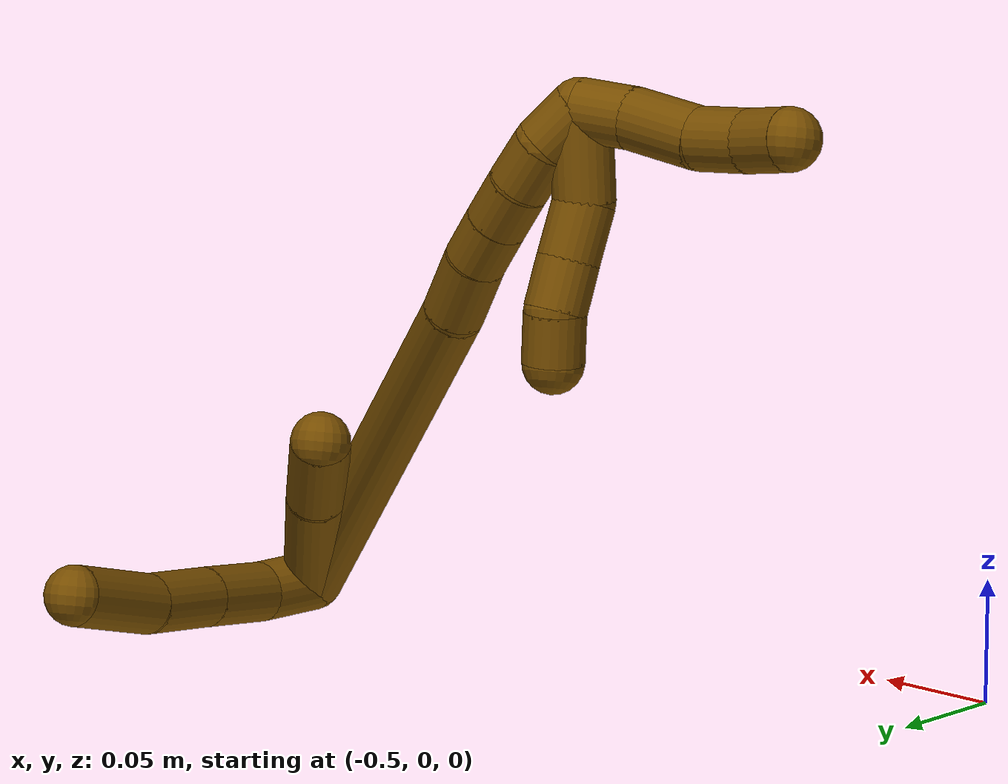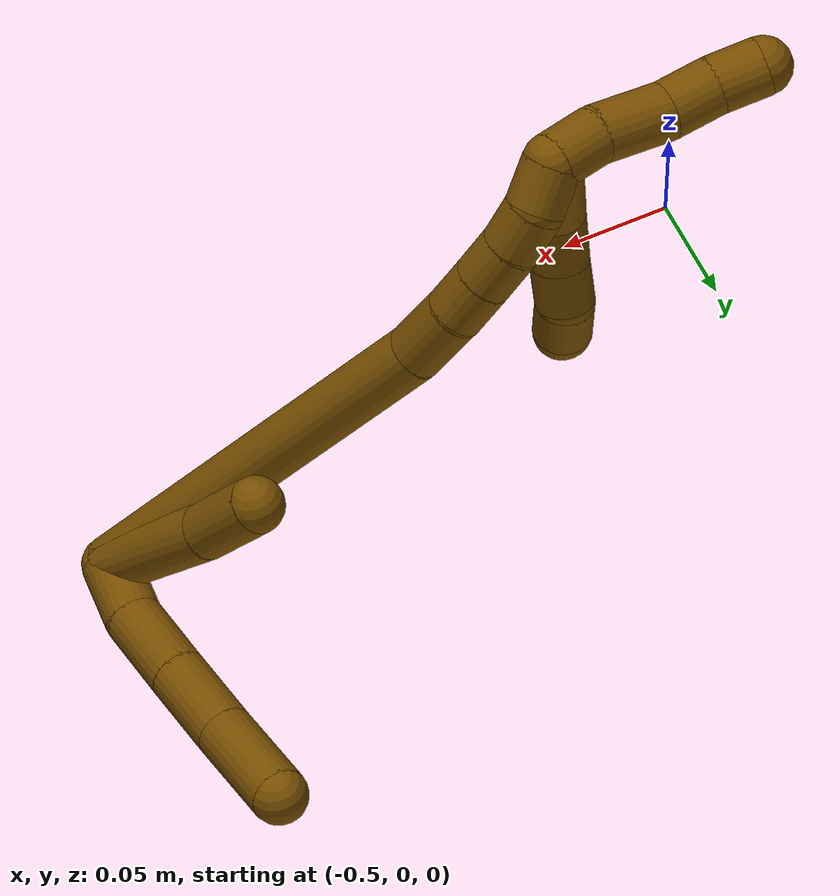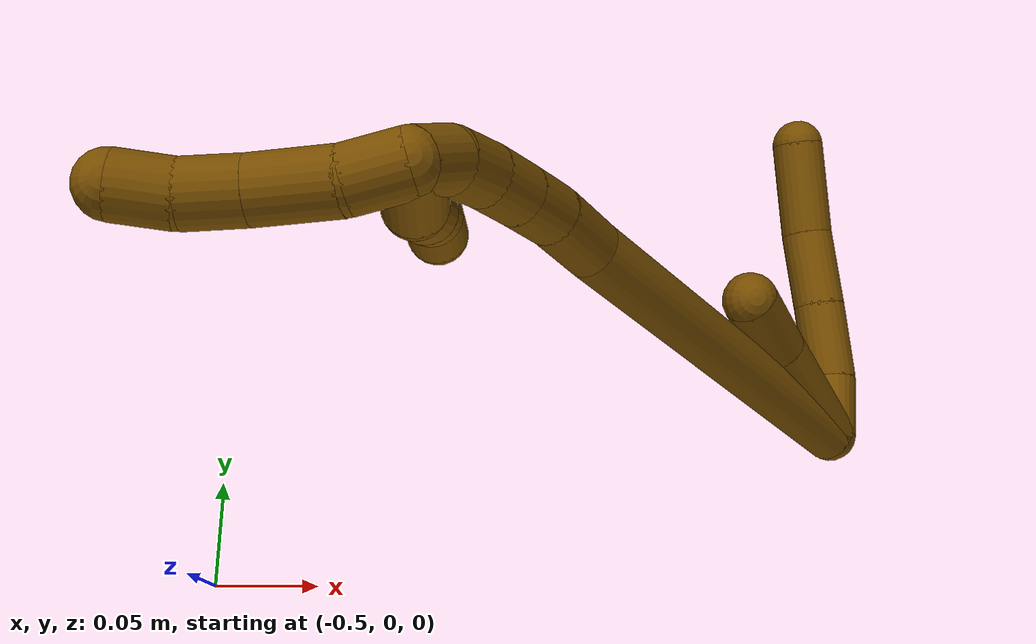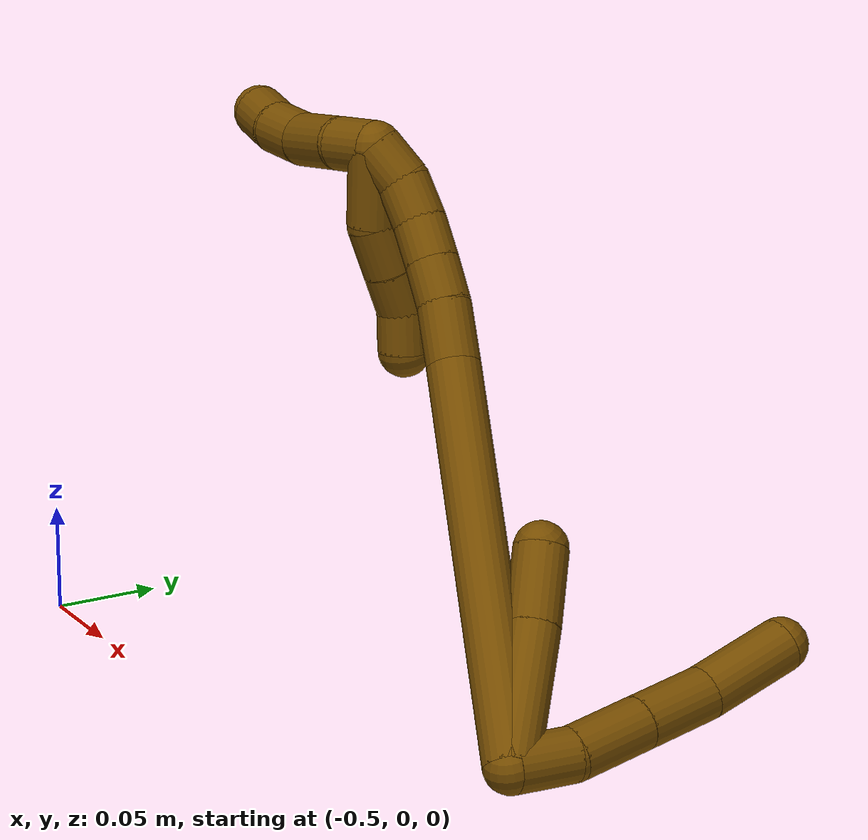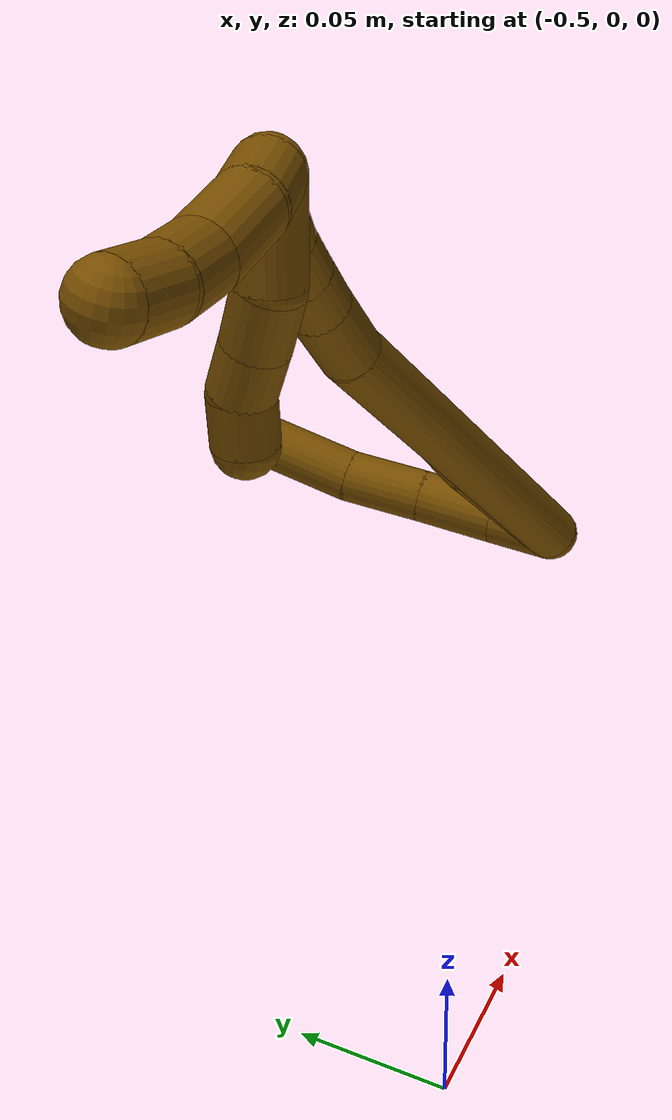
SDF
<sdf version="1.7">
 <world name="default">
  <model name="12">
   <static>0</static>
   <link name="12">
    <collision name="collision-cylinder-e_1_2_8">
     <pose>-0.014269 0.000236 -0.00327 -3.06948 -1.34495 3.05106</pose>
     <geometry><cylinder><radius>0.0125</radius><length>0.029281</length></cylinder></geometry>
     <surface>
      <friction><ode><mu>1.16</mu><mu2>1.16</mu2><slip1>0</slip1><slip2>0</slip2></ode></friction>
      <contact><ode><kp>1e+06</kp><kd>1</kd><max_vel>0</max_vel><min_depth>0.001</min_depth></ode></contact>
     </surface>
    </collision>
    <visual name="visual-cylinder-e_1_2_8">
     <pose>-0.014269 0.000236 -0.00327 -3.06948 -1.34495 3.05106</pose>
     <geometry><cylinder><radius>0.0125</radius><length>0.029281</length></cylinder></geometry>
     <material><ambient>0.466667 0.301961 0 1</ambient></material>
    </visual>
    <collision name="collision-cylinder-e_2_8_9">
     <pose>-0.046714 -0.003021 -0.008454 2.07211 -1.35506 -1.87243</pose>
     <geometry><cylinder><radius>0.0125</radius><length>0.037215</length></cylinder></geometry>
     <surface>
      <friction><ode><mu>1.16</mu><mu2>1.16</mu2><slip1>0</slip1><slip2>0</slip2></ode></friction>
      <contact><ode><kp>1e+06</kp><kd>1</kd><max_vel>0</max_vel><min_depth>0.001</min_depth></ode></contact>
     </surface>
    </collision>
    <visual name="visual-cylinder-e_2_8_9">
     <pose>-0.046714 -0.003021 -0.008454 2.07211 -1.35506 -1.87243</pose>
     <geometry><cylinder><radius>0.0125</radius><length>0.037215</length></cylinder></geometry>
     <material><ambient>0.466667 0.301961 0 1</ambient></material>
    </visual>
    <collision name="collision-cylinder-e_3_9_10">
     <pose>-0.083079 -0.010281 -0.012475 2.08061 -1.33784 -1.86482</pose>
     <geometry><cylinder><radius>0.0125</radius><length>0.037388</length></cylinder></geometry>
     <surface>
      <friction><ode><mu>1.16</mu><mu2>1.16</mu2><slip1>0</slip1><slip2>0</slip2></ode></friction>
      <contact><ode><kp>1e+06</kp><kd>1</kd><max_vel>0</max_vel><min_depth>0.001</min_depth></ode></contact>
     </surface>
    </collision>
    <visual name="visual-cylinder-e_3_9_10">
     <pose>-0.083079 -0.010281 -0.012475 2.08061 -1.33784 -1.86482</pose>
     <geometry><cylinder><radius>0.0125</radius><length>0.037388</length></cylinder></geometry>
     <material><ambient>0.466667 0.301961 0 1</ambient></material>
    </visual>
    <collision name="collision-cylinder-e_4_10_6">
     <pose>-0.123915 -0.018322 -0.013873 1.40665 -1.38175 -1.22296</pose>
     <geometry><cylinder><radius>0.0125</radius><length>0.046116</length></cylinder></geometry>
     <surface>
      <friction><ode><mu>1.16</mu><mu2>1.16</mu2><slip1>0</slip1><slip2>0</slip2></ode></friction>
      <contact><ode><kp>1e+06</kp><kd>1</kd><max_vel>0</max_vel><min_depth>0.001</min_depth></ode></contact>
     </surface>
    </collision>
    <visual name="visual-cylinder-e_4_10_6">
     <pose>-0.123915 -0.018322 -0.013873 1.40665 -1.38175 -1.22296</pose>
     <geometry><cylinder><radius>0.0125</radius><length>0.046116</length></cylinder></geometry>
     <material><ambient>0.466667 0.301961 0 1</ambient></material>
    </visual>
    <collision name="collision-cylinder-e_1_2_11">
     <pose>-0.0186 -0.019489 0.017401 0.84194 -0.61866 -0.284253</pose>
     <geometry><cylinder><radius>0.0125</radius><length>0.064143</length></cylinder></geometry>
     <surface>
      <friction><ode><mu>1.16</mu><mu2>1.16</mu2><slip1>0</slip1><slip2>0</slip2></ode></friction>
      <contact><ode><kp>1e+06</kp><kd>1</kd><max_vel>0</max_vel><min_depth>0.001</min_depth></ode></contact>
     </surface>
    </collision>
    <visual name="visual-cylinder-e_1_2_11">
     <pose>-0.0186 -0.019489 0.017401 0.84194 -0.61866 -0.284253</pose>
     <geometry><cylinder><radius>0.0125</radius><length>0.064143</length></cylinder></geometry>
     <material><ambient>0.466667 0.301961 0 1</ambient></material>
    </visual>
    <collision name="collision-cylinder-e_2_11_5">
     <pose>-0.046637 -0.049373 0.045953 0.750326 -0.554355 -0.223151</pose>
     <geometry><cylinder><radius>0.0125</radius><length>0.035857</length></cylinder></geometry>
     <surface>
      <friction><ode><mu>1.16</mu><mu2>1.16</mu2><slip1>0</slip1><slip2>0</slip2></ode></friction>
      <contact><ode><kp>1e+06</kp><kd>1</kd><max_vel>0</max_vel><min_depth>0.001</min_depth></ode></contact>
     </surface>
    </collision>
    <visual name="visual-cylinder-e_2_11_5">
     <pose>-0.046637 -0.049373 0.045953 0.750326 -0.554355 -0.223151</pose>
     <geometry><cylinder><radius>0.0125</radius><length>0.035857</length></cylinder></geometry>
     <material><ambient>0.466667 0.301961 0 1</ambient></material>
    </visual>
    <collision name="collision-cylinder-e_1_2_12">
     <pose>-0.031675 -0.069778 0.056041 0.894154 -0.340166 -0.164315</pose>
     <geometry><cylinder><radius>0.0125</radius><length>0.189872</length></cylinder></geometry>
     <surface>
      <friction><ode><mu>1.16</mu><mu2>1.16</mu2><slip1>0</slip1><slip2>0</slip2></ode></friction>
      <contact><ode><kp>1e+06</kp><kd>1</kd><max_vel>0</max_vel><min_depth>0.001</min_depth></ode></contact>
     </surface>
    </collision>
    <visual name="visual-cylinder-e_1_2_12">
     <pose>-0.031675 -0.069778 0.056041 0.894154 -0.340166 -0.164315</pose>
     <geometry><cylinder><radius>0.0125</radius><length>0.189872</length></cylinder></geometry>
     <material><ambient>0.466667 0.301961 0 1</ambient></material>
    </visual>
    <collision name="collision-cylinder-e_2_12_13">
     <pose>-0.067487 -0.14889 0.12237 0.736731 -0.289472 -0.1124</pose>
     <geometry><cylinder><radius>0.0125</radius><length>0.028988</length></cylinder></geometry>
     <surface>
      <friction><ode><mu>1.16</mu><mu2>1.16</mu2><slip1>0</slip1><slip2>0</slip2></ode></friction>
      <contact><ode><kp>1e+06</kp><kd>1</kd><max_vel>0</max_vel><min_depth>0.001</min_depth></ode></contact>
     </surface>
    </collision>
    <visual name="visual-cylinder-e_2_12_13">
     <pose>-0.067487 -0.14889 0.12237 0.736731 -0.289472 -0.1124</pose>
     <geometry><cylinder><radius>0.0125</radius><length>0.028988</length></cylinder></geometry>
     <material><ambient>0.466667 0.301961 0 1</ambient></material>
    </visual>
    <collision name="collision-cylinder-e_3_13_14">
     <pose>-0.07343 -0.165208 0.139966 0.762871 -0.176803 -0.071067</pose>
     <geometry><cylinder><radius>0.0125</radius><length>0.020538</length></cylinder></geometry>
     <surface>
      <friction><ode><mu>1.16</mu><mu2>1.16</mu2><slip1>0</slip1><slip2>0</slip2></ode></friction>
      <contact><ode><kp>1e+06</kp><kd>1</kd><max_vel>0</max_vel><min_depth>0.001</min_depth></ode></contact>
     </surface>
    </collision>
    <visual name="visual-cylinder-e_3_13_14">
     <pose>-0.07343 -0.165208 0.139966 0.762871 -0.176803 -0.071067</pose>
     <geometry><cylinder><radius>0.0125</radius><length>0.020538</length></cylinder></geometry>
     <material><ambient>0.466667 0.301961 0 1</ambient></material>
    </visual>
    <collision name="collision-cylinder-e_4_14_15">
     <pose>-0.076757 -0.179036 0.154455 0.761228 -0.15211 -0.060962</pose>
     <geometry><cylinder><radius>0.0125</radius><length>0.020071</length></cylinder></geometry>
     <surface>
      <friction><ode><mu>1.16</mu><mu2>1.16</mu2><slip1>0</slip1><slip2>0</slip2></ode></friction>
      <contact><ode><kp>1e+06</kp><kd>1</kd><max_vel>0</max_vel><min_depth>0.001</min_depth></ode></contact>
     </surface>
    </collision>
    <visual name="visual-cylinder-e_4_14_15">
     <pose>-0.076757 -0.179036 0.154455 0.761228 -0.15211 -0.060962</pose>
     <geometry><cylinder><radius>0.0125</radius><length>0.020071</length></cylinder></geometry>
     <material><ambient>0.466667 0.301961 0 1</ambient></material>
    </visual>
    <collision name="collision-cylinder-e_5_15_16">
     <pose>-0.078709 -0.192379 0.169359 0.6997 -0.042701 -0.015582</pose>
     <geometry><cylinder><radius>0.0125</radius><length>0.020207</length></cylinder></geometry>
     <surface>
      <friction><ode><mu>1.16</mu><mu2>1.16</mu2><slip1>0</slip1><slip2>0</slip2></ode></friction>
      <contact><ode><kp>1e+06</kp><kd>1</kd><max_vel>0</max_vel><min_depth>0.001</min_depth></ode></contact>
     </surface>
    </collision>
    <visual name="visual-cylinder-e_5_15_16">
     <pose>-0.078709 -0.192379 0.169359 0.6997 -0.042701 -0.015582</pose>
     <geometry><cylinder><radius>0.0125</radius><length>0.020207</length></cylinder></geometry>
     <material><ambient>0.466667 0.301961 0 1</ambient></material>
    </visual>
    <collision name="collision-cylinder-e_6_16_1">
     <pose>-0.076409 -0.205219 0.18454 0.70447 0.27218 0.100581</pose>
     <geometry><cylinder><radius>0.0125</radius><length>0.020323</length></cylinder></geometry>
     <surface>
      <friction><ode><mu>1.16</mu><mu2>1.16</mu2><slip1>0</slip1><slip2>0</slip2></ode></friction>
      <contact><ode><kp>1e+06</kp><kd>1</kd><max_vel>0</max_vel><min_depth>0.001</min_depth></ode></contact>
     </surface>
    </collision>
    <visual name="visual-cylinder-e_6_16_1">
     <pose>-0.076409 -0.205219 0.18454 0.70447 0.27218 0.100581</pose>
     <geometry><cylinder><radius>0.0125</radius><length>0.020323</length></cylinder></geometry>
     <material><ambient>0.466667 0.301961 0 1</ambient></material>
    </visual>
    <collision name="collision-cylinder-e_1_1_17">
     <pose>-0.069575 -0.210607 0.174483 -3.08737 0.229756 -2.6799</pose>
     <geometry><cylinder><radius>0.0125</radius><length>0.036028</length></cylinder></geometry>
     <surface>
      <friction><ode><mu>1.16</mu><mu2>1.16</mu2><slip1>0</slip1><slip2>0</slip2></ode></friction>
      <contact><ode><kp>1e+06</kp><kd>1</kd><max_vel>0</max_vel><min_depth>0.001</min_depth></ode></contact>
     </surface>
    </collision>
    <visual name="visual-cylinder-e_1_1_17">
     <pose>-0.069575 -0.210607 0.174483 -3.08737 0.229756 -2.6799</pose>
     <geometry><cylinder><radius>0.0125</radius><length>0.036028</length></cylinder></geometry>
     <material><ambient>0.466667 0.301961 0 1</ambient></material>
    </visual>
    <collision name="collision-cylinder-e_2_17_18">
     <pose>-0.066643 -0.207901 0.145489 -2.98988 -0.100529 1.16942</pose>
     <geometry><cylinder><radius>0.0125</radius><length>0.023342</length></cylinder></geometry>
     <surface>
      <friction><ode><mu>1.16</mu><mu2>1.16</mu2><slip1>0</slip1><slip2>0</slip2></ode></friction>
      <contact><ode><kp>1e+06</kp><kd>1</kd><max_vel>0</max_vel><min_depth>0.001</min_depth></ode></contact>
     </surface>
    </collision>
    <visual name="visual-cylinder-e_2_17_18">
     <pose>-0.066643 -0.207901 0.145489 -2.98988 -0.100529 1.16942</pose>
     <geometry><cylinder><radius>0.0125</radius><length>0.023342</length></cylinder></geometry>
     <material><ambient>0.466667 0.301961 0 1</ambient></material>
    </visual>
    <collision name="collision-cylinder-e_3_18_19">
     <pose>-0.068999 -0.205003 0.123862 -3.02947 -0.115465 1.6002</pose>
     <geometry><cylinder><radius>0.0125</radius><length>0.020564</length></cylinder></geometry>
     <surface>
      <friction><ode><mu>1.16</mu><mu2>1.16</mu2><slip1>0</slip1><slip2>0</slip2></ode></friction>
      <contact><ode><kp>1e+06</kp><kd>1</kd><max_vel>0</max_vel><min_depth>0.001</min_depth></ode></contact>
     </surface>
    </collision>
    <visual name="visual-cylinder-e_3_18_19">
     <pose>-0.068999 -0.205003 0.123862 -3.02947 -0.115465 1.6002</pose>
     <geometry><cylinder><radius>0.0125</radius><length>0.020564</length></cylinder></geometry>
     <material><ambient>0.466667 0.301961 0 1</ambient></material>
    </visual>
    <collision name="collision-cylinder-e_4_19_4">
     <pose>-0.067996 -0.202328 0.104041 -2.98448 0.219795 -1.90224</pose>
     <geometry><cylinder><radius>0.0125</radius><length>0.020067</length></cylinder></geometry>
     <surface>
      <friction><ode><mu>1.16</mu><mu2>1.16</mu2><slip1>0</slip1><slip2>0</slip2></ode></friction>
      <contact><ode><kp>1e+06</kp><kd>1</kd><max_vel>0</max_vel><min_depth>0.001</min_depth></ode></contact>
     </surface>
    </collision>
    <visual name="visual-cylinder-e_4_19_4">
     <pose>-0.067996 -0.202328 0.104041 -2.98448 0.219795 -1.90224</pose>
     <geometry><cylinder><radius>0.0125</radius><length>0.020067</length></cylinder></geometry>
     <material><ambient>0.466667 0.301961 0 1</ambient></material>
    </visual>
    <collision name="collision-cylinder-e_1_1_20">
     <pose>-0.069726 -0.222243 0.190767 1.68546 0.352056 0.393885</pose>
     <geometry><cylinder><radius>0.0125</radius><length>0.022917</length></cylinder></geometry>
     <surface>
      <friction><ode><mu>1.16</mu><mu2>1.16</mu2><slip1>0</slip1><slip2>0</slip2></ode></friction>
      <contact><ode><kp>1e+06</kp><kd>1</kd><max_vel>0</max_vel><min_depth>0.001</min_depth></ode></contact>
     </surface>
    </collision>
    <visual name="visual-cylinder-e_1_1_20">
     <pose>-0.069726 -0.222243 0.190767 1.68546 0.352056 0.393885</pose>
     <geometry><cylinder><radius>0.0125</radius><length>0.022917</length></cylinder></geometry>
     <material><ambient>0.466667 0.301961 0 1</ambient></material>
    </visual>
    <collision name="collision-cylinder-e_2_20_21">
     <pose>-0.063221 -0.248569 0.186103 1.78683 0.15812 0.196361</pose>
     <geometry><cylinder><radius>0.0125</radius><length>0.032431</length></cylinder></geometry>
     <surface>
      <friction><ode><mu>1.16</mu><mu2>1.16</mu2><slip1>0</slip1><slip2>0</slip2></ode></friction>
      <contact><ode><kp>1e+06</kp><kd>1</kd><max_vel>0</max_vel><min_depth>0.001</min_depth></ode></contact>
     </surface>
    </collision>
    <visual name="visual-cylinder-e_2_20_21">
     <pose>-0.063221 -0.248569 0.186103 1.78683 0.15812 0.196361</pose>
     <geometry><cylinder><radius>0.0125</radius><length>0.032431</length></cylinder></geometry>
     <material><ambient>0.466667 0.301961 0 1</ambient></material>
    </visual>
    <collision name="collision-cylinder-e_3_21_22">
     <pose>-0.058866 -0.275589 0.182561 1.58044 0.157007 0.158522</pose>
     <geometry><cylinder><radius>0.0125</radius><length>0.023042</length></cylinder></geometry>
     <surface>
      <friction><ode><mu>1.16</mu><mu2>1.16</mu2><slip1>0</slip1><slip2>0</slip2></ode></friction>
      <contact><ode><kp>1e+06</kp><kd>1</kd><max_vel>0</max_vel><min_depth>0.001</min_depth></ode></contact>
     </surface>
    </collision>
    <visual name="visual-cylinder-e_3_21_22">
     <pose>-0.058866 -0.275589 0.182561 1.58044 0.157007 0.158522</pose>
     <geometry><cylinder><radius>0.0125</radius><length>0.023042</length></cylinder></geometry>
     <material><ambient>0.466667 0.301961 0 1</ambient></material>
    </visual>
    <collision name="collision-cylinder-e_4_22_3">
     <pose>-0.057485 -0.297758 0.182822 1.53643 -0.0389 -0.037586</pose>
     <geometry><cylinder><radius>0.0125</radius><length>0.021609</length></cylinder></geometry>
     <surface>
      <friction><ode><mu>1.16</mu><mu2>1.16</mu2><slip1>0</slip1><slip2>0</slip2></ode></friction>
      <contact><ode><kp>1e+06</kp><kd>1</kd><max_vel>0</max_vel><min_depth>0.001</min_depth></ode></contact>
     </surface>
    </collision>
    <visual name="visual-cylinder-e_4_22_3">
     <pose>-0.057485 -0.297758 0.182822 1.53643 -0.0389 -0.037586</pose>
     <geometry><cylinder><radius>0.0125</radius><length>0.021609</length></cylinder></geometry>
     <material><ambient>0.466667 0.301961 0 1</ambient></material>
    </visual>
    <collision name="collision-sphere-3">
     <pose>-0.057905 -0.308548 0.183193 0 -0 0</pose>
     <geometry><sphere><radius>0.0125</radius></sphere></geometry>
     <surface>
      <friction><ode><mu>1.16</mu><mu2>1.16</mu2><slip1>0</slip1><slip2>0</slip2></ode></friction>
      <contact><ode><kp>1e+06</kp><kd>1</kd><max_vel>0</max_vel><min_depth>0.001</min_depth></ode></contact>
     </surface>
    </collision>
    <visual name="visual-sphere-3">
     <pose>-0.057905 -0.308548 0.183193 0 -0 0</pose>
     <geometry><sphere><radius>0.0125</radius></sphere></geometry>
     <material><ambient>0.466667 0.301961 0 1</ambient></material>
    </visual>
    <collision name="collision-sphere-22">
     <pose>-0.057065 -0.286968 0.182451 0 -0 0</pose>
     <geometry><sphere><radius>0.0125</radius></sphere></geometry>
     <surface>
      <friction><ode><mu>1.16</mu><mu2>1.16</mu2><slip1>0</slip1><slip2>0</slip2></ode></friction>
      <contact><ode><kp>1e+06</kp><kd>1</kd><max_vel>0</max_vel><min_depth>0.001</min_depth></ode></contact>
     </surface>
    </collision>
    <visual name="visual-sphere-22">
     <pose>-0.057065 -0.286968 0.182451 0 -0 0</pose>
     <geometry><sphere><radius>0.0125</radius></sphere></geometry>
     <material><ambient>0.466667 0.301961 0 1</ambient></material>
    </visual>
    <collision name="collision-sphere-21">
     <pose>-0.060668 -0.26421 0.182671 0 -0 0</pose>
     <geometry><sphere><radius>0.0125</radius></sphere></geometry>
     <surface>
      <friction><ode><mu>1.16</mu><mu2>1.16</mu2><slip1>0</slip1><slip2>0</slip2></ode></friction>
      <contact><ode><kp>1e+06</kp><kd>1</kd><max_vel>0</max_vel><min_depth>0.001</min_depth></ode></contact>
     </surface>
    </collision>
    <visual name="visual-sphere-21">
     <pose>-0.060668 -0.26421 0.182671 0 -0 0</pose>
     <geometry><sphere><radius>0.0125</radius></sphere></geometry>
     <material><ambient>0.466667 0.301961 0 1</ambient></material>
    </visual>
    <collision name="collision-sphere-20">
     <pose>-0.065775 -0.232928 0.189536 0 -0 0</pose>
     <geometry><sphere><radius>0.0125</radius></sphere></geometry>
     <surface>
      <friction><ode><mu>1.16</mu><mu2>1.16</mu2><slip1>0</slip1><slip2>0</slip2></ode></friction>
      <contact><ode><kp>1e+06</kp><kd>1</kd><max_vel>0</max_vel><min_depth>0.001</min_depth></ode></contact>
     </surface>
    </collision>
    <visual name="visual-sphere-20">
     <pose>-0.065775 -0.232928 0.189536 0 -0 0</pose>
     <geometry><sphere><radius>0.0125</radius></sphere></geometry>
     <material><ambient>0.466667 0.301961 0 1</ambient></material>
    </visual>
    <collision name="collision-sphere-4">
     <pose>-0.065809 -0.200796 0.094369 0 -0 0</pose>
     <geometry><sphere><radius>0.0125</radius></sphere></geometry>
     <surface>
      <friction><ode><mu>1.16</mu><mu2>1.16</mu2><slip1>0</slip1><slip2>0</slip2></ode></friction>
      <contact><ode><kp>1e+06</kp><kd>1</kd><max_vel>0</max_vel><min_depth>0.001</min_depth></ode></contact>
     </surface>
    </collision>
    <visual name="visual-sphere-4">
     <pose>-0.065809 -0.200796 0.094369 0 -0 0</pose>
     <geometry><sphere><radius>0.0125</radius></sphere></geometry>
     <material><ambient>0.466667 0.301961 0 1</ambient></material>
    </visual>
    <collision name="collision-sphere-11">
     <pose>-0.037199 -0.038978 0.034802 0 -0 0</pose>
     <geometry><sphere><radius>0.0125</radius></sphere></geometry>
     <surface>
      <friction><ode><mu>1.16</mu><mu2>1.16</mu2><slip1>0</slip1><slip2>0</slip2></ode></friction>
      <contact><ode><kp>1e+06</kp><kd>1</kd><max_vel>0</max_vel><min_depth>0.001</min_depth></ode></contact>
     </surface>
    </collision>
    <visual name="visual-sphere-11">
     <pose>-0.037199 -0.038978 0.034802 0 -0 0</pose>
     <geometry><sphere><radius>0.0125</radius></sphere></geometry>
     <material><ambient>0.466667 0.301961 0 1</ambient></material>
    </visual>
    <collision name="collision-sphere-6">
     <pose>-0.146562 -0.022597 -0.013165 0 -0 0</pose>
     <geometry><sphere><radius>0.0125</radius></sphere></geometry>
     <surface>
      <friction><ode><mu>1.16</mu><mu2>1.16</mu2><slip1>0</slip1><slip2>0</slip2></ode></friction>
      <contact><ode><kp>1e+06</kp><kd>1</kd><max_vel>0</max_vel><min_depth>0.001</min_depth></ode></contact>
     </surface>
    </collision>
    <visual name="visual-sphere-6">
     <pose>-0.146562 -0.022597 -0.013165 0 -0 0</pose>
     <geometry><sphere><radius>0.0125</radius></sphere></geometry>
     <material><ambient>0.466667 0.301961 0 1</ambient></material>
    </visual>
    <collision name="collision-sphere-10">
     <pose>-0.101268 -0.014047 -0.014581 0 -0 0</pose>
     <geometry><sphere><radius>0.0125</radius></sphere></geometry>
     <surface>
      <friction><ode><mu>1.16</mu><mu2>1.16</mu2><slip1>0</slip1><slip2>0</slip2></ode></friction>
      <contact><ode><kp>1e+06</kp><kd>1</kd><max_vel>0</max_vel><min_depth>0.001</min_depth></ode></contact>
     </surface>
    </collision>
    <visual name="visual-sphere-10">
     <pose>-0.101268 -0.014047 -0.014581 0 -0 0</pose>
     <geometry><sphere><radius>0.0125</radius></sphere></geometry>
     <material><ambient>0.466667 0.301961 0 1</ambient></material>
    </visual>
    <collision name="collision-sphere-9">
     <pose>-0.06489 -0.006514 -0.010369 0 -0 0</pose>
     <geometry><sphere><radius>0.0125</radius></sphere></geometry>
     <surface>
      <friction><ode><mu>1.16</mu><mu2>1.16</mu2><slip1>0</slip1><slip2>0</slip2></ode></friction>
      <contact><ode><kp>1e+06</kp><kd>1</kd><max_vel>0</max_vel><min_depth>0.001</min_depth></ode></contact>
     </surface>
    </collision>
    <visual name="visual-sphere-9">
     <pose>-0.06489 -0.006514 -0.010369 0 -0 0</pose>
     <geometry><sphere><radius>0.0125</radius></sphere></geometry>
     <material><ambient>0.466667 0.301961 0 1</ambient></material>
    </visual>
    <collision name="collision-sphere-2">
     <geometry><sphere><radius>0.0125</radius></sphere></geometry>
     <surface>
      <friction><ode><mu>1.16</mu><mu2>1.16</mu2><slip1>0</slip1><slip2>0</slip2></ode></friction>
      <contact><ode><kp>1e+06</kp><kd>1</kd><max_vel>0</max_vel><min_depth>0.001</min_depth></ode></contact>
     </surface>
    </collision>
    <visual name="visual-sphere-2">
     <geometry><sphere><radius>0.0125</radius></sphere></geometry>
     <material><ambient>0.466667 0.301961 0 1</ambient></material>
    </visual>
    <collision name="collision-sphere-19">
     <pose>-0.070184 -0.203861 0.113712 0 -0 0</pose>
     <geometry><sphere><radius>0.0125</radius></sphere></geometry>
     <surface>
      <friction><ode><mu>1.16</mu><mu2>1.16</mu2><slip1>0</slip1><slip2>0</slip2></ode></friction>
      <contact><ode><kp>1e+06</kp><kd>1</kd><max_vel>0</max_vel><min_depth>0.001</min_depth></ode></contact>
     </surface>
    </collision>
    <visual name="visual-sphere-19">
     <pose>-0.070184 -0.203861 0.113712 0 -0 0</pose>
     <geometry><sphere><radius>0.0125</radius></sphere></geometry>
     <material><ambient>0.466667 0.301961 0 1</ambient></material>
    </visual>
    <collision name="collision-sphere-8">
     <pose>-0.028537 0.000472 -0.00654 0 -0 0</pose>
     <geometry><sphere><radius>0.0125</radius></sphere></geometry>
     <surface>
      <friction><ode><mu>1.16</mu><mu2>1.16</mu2><slip1>0</slip1><slip2>0</slip2></ode></friction>
      <contact><ode><kp>1e+06</kp><kd>1</kd><max_vel>0</max_vel><min_depth>0.001</min_depth></ode></contact>
     </surface>
    </collision>
    <visual name="visual-sphere-8">
     <pose>-0.028537 0.000472 -0.00654 0 -0 0</pose>
     <geometry><sphere><radius>0.0125</radius></sphere></geometry>
     <material><ambient>0.466667 0.301961 0 1</ambient></material>
    </visual>
    <collision name="collision-sphere-5">
     <pose>-0.056074 -0.059767 0.057103 0 -0 0</pose>
     <geometry><sphere><radius>0.0125</radius></sphere></geometry>
     <surface>
      <friction><ode><mu>1.16</mu><mu2>1.16</mu2><slip1>0</slip1><slip2>0</slip2></ode></friction>
      <contact><ode><kp>1e+06</kp><kd>1</kd><max_vel>0</max_vel><min_depth>0.001</min_depth></ode></contact>
     </surface>
    </collision>
    <visual name="visual-sphere-5">
     <pose>-0.056074 -0.059767 0.057103 0 -0 0</pose>
     <geometry><sphere><radius>0.0125</radius></sphere></geometry>
     <material><ambient>0.466667 0.301961 0 1</ambient></material>
    </visual>
    <collision name="collision-sphere-12">
     <pose>-0.06335 -0.139557 0.112081 0 -0 0</pose>
     <geometry><sphere><radius>0.0125</radius></sphere></geometry>
     <surface>
      <friction><ode><mu>1.16</mu><mu2>1.16</mu2><slip1>0</slip1><slip2>0</slip2></ode></friction>
      <contact><ode><kp>1e+06</kp><kd>1</kd><max_vel>0</max_vel><min_depth>0.001</min_depth></ode></contact>
     </surface>
    </collision>
    <visual name="visual-sphere-12">
     <pose>-0.06335 -0.139557 0.112081 0 -0 0</pose>
     <geometry><sphere><radius>0.0125</radius></sphere></geometry>
     <material><ambient>0.466667 0.301961 0 1</ambient></material>
    </visual>
    <collision name="collision-sphere-13">
     <pose>-0.071624 -0.158223 0.132659 0 -0 0</pose>
     <geometry><sphere><radius>0.0125</radius></sphere></geometry>
     <surface>
      <friction><ode><mu>1.16</mu><mu2>1.16</mu2><slip1>0</slip1><slip2>0</slip2></ode></friction>
      <contact><ode><kp>1e+06</kp><kd>1</kd><max_vel>0</max_vel><min_depth>0.001</min_depth></ode></contact>
     </surface>
    </collision>
    <visual name="visual-sphere-13">
     <pose>-0.071624 -0.158223 0.132659 0 -0 0</pose>
     <geometry><sphere><radius>0.0125</radius></sphere></geometry>
     <material><ambient>0.466667 0.301961 0 1</ambient></material>
    </visual>
    <collision name="collision-sphere-14">
     <pose>-0.075237 -0.172193 0.147273 0 -0 0</pose>
     <geometry><sphere><radius>0.0125</radius></sphere></geometry>
     <surface>
      <friction><ode><mu>1.16</mu><mu2>1.16</mu2><slip1>0</slip1><slip2>0</slip2></ode></friction>
      <contact><ode><kp>1e+06</kp><kd>1</kd><max_vel>0</max_vel><min_depth>0.001</min_depth></ode></contact>
     </surface>
    </collision>
    <visual name="visual-sphere-14">
     <pose>-0.075237 -0.172193 0.147273 0 -0 0</pose>
     <geometry><sphere><radius>0.0125</radius></sphere></geometry>
     <material><ambient>0.466667 0.301961 0 1</ambient></material>
    </visual>
    <collision name="collision-sphere-15">
     <pose>-0.078278 -0.185879 0.161637 0 -0 0</pose>
     <geometry><sphere><radius>0.0125</radius></sphere></geometry>
     <surface>
      <friction><ode><mu>1.16</mu><mu2>1.16</mu2><slip1>0</slip1><slip2>0</slip2></ode></friction>
      <contact><ode><kp>1e+06</kp><kd>1</kd><max_vel>0</max_vel><min_depth>0.001</min_depth></ode></contact>
     </surface>
    </collision>
    <visual name="visual-sphere-15">
     <pose>-0.078278 -0.185879 0.161637 0 -0 0</pose>
     <geometry><sphere><radius>0.0125</radius></sphere></geometry>
     <material><ambient>0.466667 0.301961 0 1</ambient></material>
    </visual>
    <collision name="collision-sphere-16">
     <pose>-0.079141 -0.19888 0.177082 0 -0 0</pose>
     <geometry><sphere><radius>0.0125</radius></sphere></geometry>
     <surface>
      <friction><ode><mu>1.16</mu><mu2>1.16</mu2><slip1>0</slip1><slip2>0</slip2></ode></friction>
      <contact><ode><kp>1e+06</kp><kd>1</kd><max_vel>0</max_vel><min_depth>0.001</min_depth></ode></contact>
     </surface>
    </collision>
    <visual name="visual-sphere-16">
     <pose>-0.079141 -0.19888 0.177082 0 -0 0</pose>
     <geometry><sphere><radius>0.0125</radius></sphere></geometry>
     <material><ambient>0.466667 0.301961 0 1</ambient></material>
    </visual>
    <collision name="collision-sphere-1">
     <pose>-0.073677 -0.211557 0.191997 0 -0 0</pose>
     <geometry><sphere><radius>0.0125</radius></sphere></geometry>
     <surface>
      <friction><ode><mu>1.16</mu><mu2>1.16</mu2><slip1>0</slip1><slip2>0</slip2></ode></friction>
      <contact><ode><kp>1e+06</kp><kd>1</kd><max_vel>0</max_vel><min_depth>0.001</min_depth></ode></contact>
     </surface>
    </collision>
    <visual name="visual-sphere-1">
     <pose>-0.073677 -0.211557 0.191997 0 -0 0</pose>
     <geometry><sphere><radius>0.0125</radius></sphere></geometry>
     <material><ambient>0.466667 0.301961 0 1</ambient></material>
    </visual>
    <collision name="collision-sphere-18">
     <pose>-0.067815 -0.206146 0.134011 0 -0 0</pose>
     <geometry><sphere><radius>0.0125</radius></sphere></geometry>
     <surface>
      <friction><ode><mu>1.16</mu><mu2>1.16</mu2><slip1>0</slip1><slip2>0</slip2></ode></friction>
      <contact><ode><kp>1e+06</kp><kd>1</kd><max_vel>0</max_vel><min_depth>0.001</min_depth></ode></contact>
     </surface>
    </collision>
    <visual name="visual-sphere-18">
     <pose>-0.067815 -0.206146 0.134011 0 -0 0</pose>
     <geometry><sphere><radius>0.0125</radius></sphere></geometry>
     <material><ambient>0.466667 0.301961 0 1</ambient></material>
    </visual>
    <collision name="collision-sphere-17">
     <pose>-0.065472 -0.209656 0.156968 0 -0 0</pose>
     <geometry><sphere><radius>0.0125</radius></sphere></geometry>
     <surface>
      <friction><ode><mu>1.16</mu><mu2>1.16</mu2><slip1>0</slip1><slip2>0</slip2></ode></friction>
      <contact><ode><kp>1e+06</kp><kd>1</kd><max_vel>0</max_vel><min_depth>0.001</min_depth></ode></contact>
     </surface>
    </collision>
    <visual name="visual-sphere-17">
     <pose>-0.065472 -0.209656 0.156968 0 -0 0</pose>
     <geometry><sphere><radius>0.0125</radius></sphere></geometry>
     <material><ambient>0.466667 0.301961 0 1</ambient></material>
    </visual>
    <inertial>
     <pose>-0.054796 -0.111494 0.081952 0 -0 0</pose>
     <mass>0.75</mass>
     <inertia>
      <ixx>0.000455</ixx>
      <ixy>0</ixy>
      <ixz>0</ixz>
      <iyy>0.000311</iyy>
      <iyz>0</iyz>
      <izz>0.000703</izz>
     </inertia>
    </inertial>
   </link>
   <pose>-0.199655 0.074366 0.011427 -0.114701 0.22864 -1.65001</pose>
  </model>
 </world>
</sdf>
